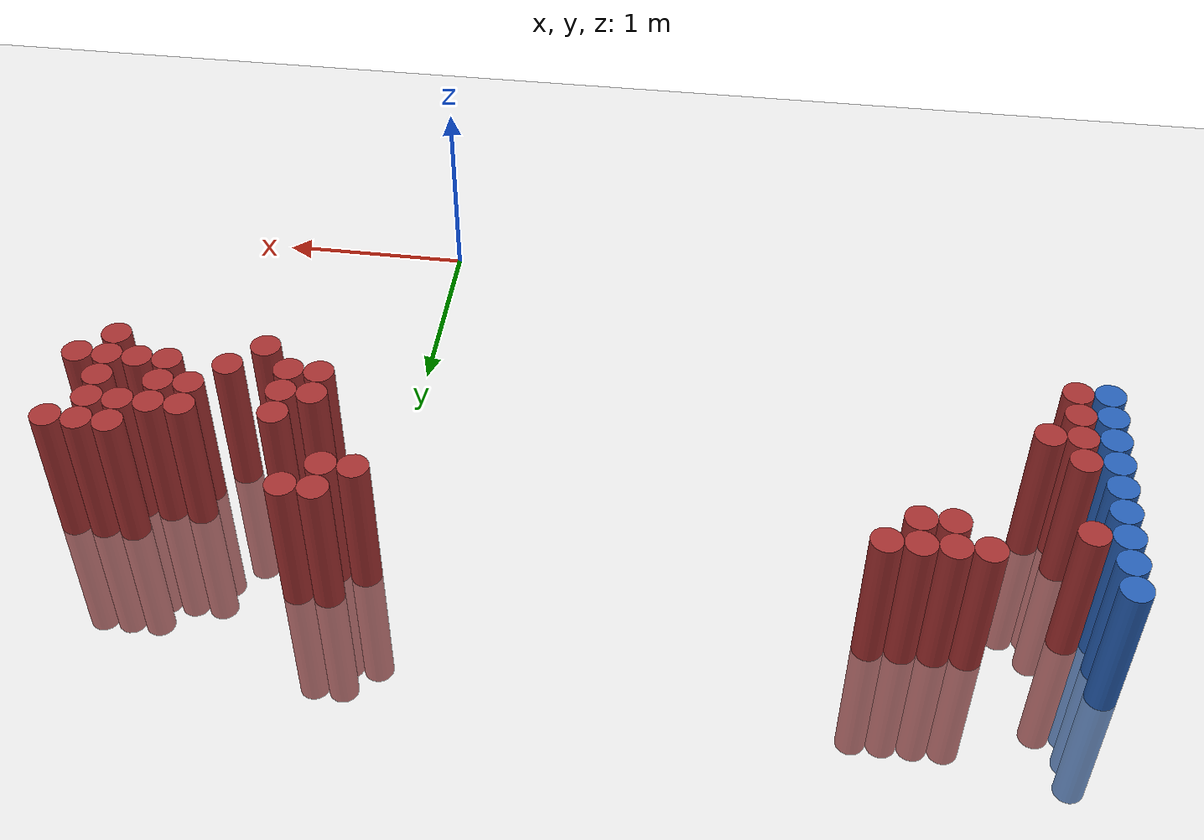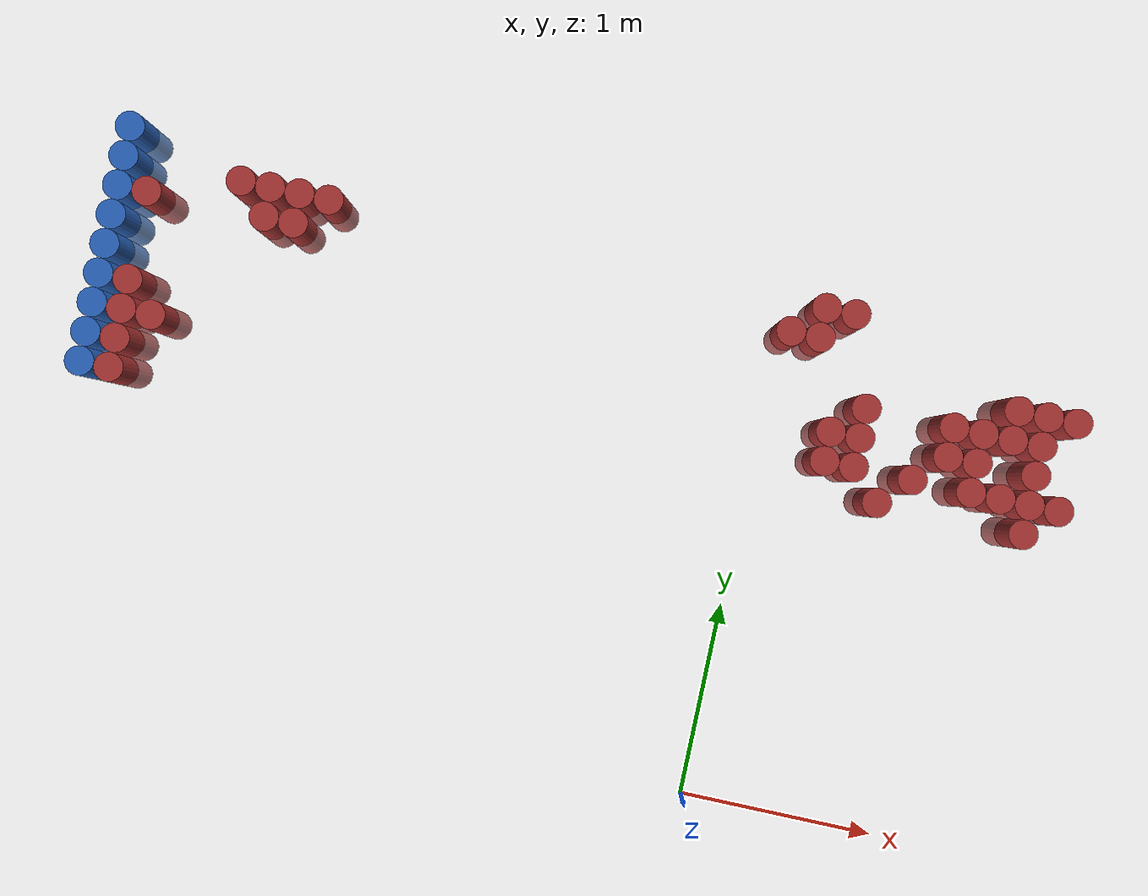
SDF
<sdf version="1.6">
 <world name="default">
  <model name="ground_plane">
   <static>1</static>
   <link name="link">
    <collision name="collision">
     <geometry><plane><normal>0 0 1</normal><size>100 100</size></plane></geometry>
     <surface><friction><ode><mu>100</mu><mu2>50</mu2></ode></friction></surface>
    </collision>
    <visual name="visual">
     <cast_shadows>0</cast_shadows>
     <geometry><plane><normal>0 0 1</normal><size>100 100</size></plane></geometry>
     <material>
      <script><uri>file://media/materials/scripts/gazebo.material</uri><name>Gazebo/Grey</name></script>
     </material>
    </visual>
   </link>
  </model>
  <model name="unit_cylinder_137">
   <static>1</static>
   <pose>-3.425000 1.675000 0.000000 0.000000 0.000000 0.000000</pose>
   <link name="link">
    <inertial>
     <mass>1</mass>
     <inertia><ixx>0.145833</ixx><ixy>0</ixy><ixz>0</ixz><iyy>0.145833</iyy><iyz>0</iyz><izz>0.125</izz></inertia>
    </inertial>
    <collision name="collision">
     <geometry><cylinder><radius>0.075000</radius><length>1.5</length></cylinder></geometry>
    </collision>
    <visual name="visual">
     <geometry><cylinder><radius>0.075000</radius><length>1.5</length></cylinder></geometry>
     <material>
      <ambient>0.152000 0.379000 0.720000 1</ambient>
      <diffuse>0.152000 0.379000 0.720000 1</diffuse>
     </material>
     <material>
      <script><name>Gazebo/Grey</name><uri>file://media/materials/scripts/gazebo.material</uri></script>
     </material>
    </visual>
   </link>
  </model>
  <model name="unit_cylinder_139">
   <static>1</static>
   <pose>-3.425000 1.825000 0.000000 0.000000 0.000000 0.000000</pose>
   <link name="link">
    <inertial>
     <mass>1</mass>
     <inertia><ixx>0.145833</ixx><ixy>0</ixy><ixz>0</ixz><iyy>0.145833</iyy><iyz>0</iyz><izz>0.125</izz></inertia>
    </inertial>
    <collision name="collision">
     <geometry><cylinder><radius>0.075000</radius><length>1.5</length></cylinder></geometry>
    </collision>
    <visual name="visual">
     <geometry><cylinder><radius>0.075000</radius><length>1.5</length></cylinder></geometry>
     <material>
      <ambient>0.152000 0.379000 0.720000 1</ambient>
      <diffuse>0.152000 0.379000 0.720000 1</diffuse>
     </material>
     <material>
      <script><name>Gazebo/Grey</name><uri>file://media/materials/scripts/gazebo.material</uri></script>
     </material>
    </visual>
   </link>
  </model>
  <model name="unit_cylinder_141">
   <static>1</static>
   <pose>-3.425000 1.975000 0.000000 0.000000 0.000000 0.000000</pose>
   <link name="link">
    <inertial>
     <mass>1</mass>
     <inertia><ixx>0.145833</ixx><ixy>0</ixy><ixz>0</ixz><iyy>0.145833</iyy><iyz>0</iyz><izz>0.125</izz></inertia>
    </inertial>
    <collision name="collision">
     <geometry><cylinder><radius>0.075000</radius><length>1.5</length></cylinder></geometry>
    </collision>
    <visual name="visual">
     <geometry><cylinder><radius>0.075000</radius><length>1.5</length></cylinder></geometry>
     <material>
      <ambient>0.152000 0.379000 0.720000 1</ambient>
      <diffuse>0.152000 0.379000 0.720000 1</diffuse>
     </material>
     <material>
      <script><name>Gazebo/Grey</name><uri>file://media/materials/scripts/gazebo.material</uri></script>
     </material>
    </visual>
   </link>
  </model>
  <model name="unit_cylinder_143">
   <static>1</static>
   <pose>-3.425000 2.125000 0.000000 0.000000 0.000000 0.000000</pose>
   <link name="link">
    <inertial>
     <mass>1</mass>
     <inertia><ixx>0.145833</ixx><ixy>0</ixy><ixz>0</ixz><iyy>0.145833</iyy><iyz>0</iyz><izz>0.125</izz></inertia>
    </inertial>
    <collision name="collision">
     <geometry><cylinder><radius>0.075000</radius><length>1.5</length></cylinder></geometry>
    </collision>
    <visual name="visual">
     <geometry><cylinder><radius>0.075000</radius><length>1.5</length></cylinder></geometry>
     <material>
      <ambient>0.152000 0.379000 0.720000 1</ambient>
      <diffuse>0.152000 0.379000 0.720000 1</diffuse>
     </material>
     <material>
      <script><name>Gazebo/Grey</name><uri>file://media/materials/scripts/gazebo.material</uri></script>
     </material>
    </visual>
   </link>
  </model>
  <model name="unit_cylinder_145">
   <static>1</static>
   <pose>-3.425000 2.275000 0.000000 0.000000 0.000000 0.000000</pose>
   <link name="link">
    <inertial>
     <mass>1</mass>
     <inertia><ixx>0.145833</ixx><ixy>0</ixy><ixz>0</ixz><iyy>0.145833</iyy><iyz>0</iyz><izz>0.125</izz></inertia>
    </inertial>
    <collision name="collision">
     <geometry><cylinder><radius>0.075000</radius><length>1.5</length></cylinder></geometry>
    </collision>
    <visual name="visual">
     <geometry><cylinder><radius>0.075000</radius><length>1.5</length></cylinder></geometry>
     <material>
      <ambient>0.152000 0.379000 0.720000 1</ambient>
      <diffuse>0.152000 0.379000 0.720000 1</diffuse>
     </material>
     <material>
      <script><name>Gazebo/Grey</name><uri>file://media/materials/scripts/gazebo.material</uri></script>
     </material>
    </visual>
   </link>
  </model>
  <model name="unit_cylinder_147">
   <static>1</static>
   <pose>-3.425000 2.425000 0.000000 0.000000 0.000000 0.000000</pose>
   <link name="link">
    <inertial>
     <mass>1</mass>
     <inertia><ixx>0.145833</ixx><ixy>0</ixy><ixz>0</ixz><iyy>0.145833</iyy><iyz>0</iyz><izz>0.125</izz></inertia>
    </inertial>
    <collision name="collision">
     <geometry><cylinder><radius>0.075000</radius><length>1.5</length></cylinder></geometry>
    </collision>
    <visual name="visual">
     <geometry><cylinder><radius>0.075000</radius><length>1.5</length></cylinder></geometry>
     <material>
      <ambient>0.152000 0.379000 0.720000 1</ambient>
      <diffuse>0.152000 0.379000 0.720000 1</diffuse>
     </material>
     <material>
      <script><name>Gazebo/Grey</name><uri>file://media/materials/scripts/gazebo.material</uri></script>
     </material>
    </visual>
   </link>
  </model>
  <model name="unit_cylinder_149">
   <static>1</static>
   <pose>-3.425000 2.575000 0.000000 0.000000 0.000000 0.000000</pose>
   <link name="link">
    <inertial>
     <mass>1</mass>
     <inertia><ixx>0.145833</ixx><ixy>0</ixy><ixz>0</ixz><iyy>0.145833</iyy><iyz>0</iyz><izz>0.125</izz></inertia>
    </inertial>
    <collision name="collision">
     <geometry><cylinder><radius>0.075000</radius><length>1.5</length></cylinder></geometry>
    </collision>
    <visual name="visual">
     <geometry><cylinder><radius>0.075000</radius><length>1.5</length></cylinder></geometry>
     <material>
      <ambient>0.152000 0.379000 0.720000 1</ambient>
      <diffuse>0.152000 0.379000 0.720000 1</diffuse>
     </material>
     <material>
      <script><name>Gazebo/Grey</name><uri>file://media/materials/scripts/gazebo.material</uri></script>
     </material>
    </visual>
   </link>
  </model>
  <model name="unit_cylinder_151">
   <static>1</static>
   <pose>-3.425000 2.725000 0.000000 0.000000 0.000000 0.000000</pose>
   <link name="link">
    <inertial>
     <mass>1</mass>
     <inertia><ixx>0.145833</ixx><ixy>0</ixy><ixz>0</ixz><iyy>0.145833</iyy><iyz>0</iyz><izz>0.125</izz></inertia>
    </inertial>
    <collision name="collision">
     <geometry><cylinder><radius>0.075000</radius><length>1.5</length></cylinder></geometry>
    </collision>
    <visual name="visual">
     <geometry><cylinder><radius>0.075000</radius><length>1.5</length></cylinder></geometry>
     <material>
      <ambient>0.152000 0.379000 0.720000 1</ambient>
      <diffuse>0.152000 0.379000 0.720000 1</diffuse>
     </material>
     <material>
      <script><name>Gazebo/Grey</name><uri>file://media/materials/scripts/gazebo.material</uri></script>
     </material>
    </visual>
   </link>
  </model>
  <model name="unit_cylinder_231">
   <static>1</static>
   <pose>-3.425000 1.525000 0.000000 0.000000 0.000000 0.000000</pose>
   <link name="link">
    <inertial>
     <mass>1</mass>
     <inertia><ixx>0.145833</ixx><ixy>0</ixy><ixz>0</ixz><iyy>0.145833</iyy><iyz>0</iyz><izz>0.125</izz></inertia>
    </inertial>
    <collision name="collision">
     <geometry><cylinder><radius>0.075000</radius><length>1.5</length></cylinder></geometry>
    </collision>
    <visual name="visual">
     <geometry><cylinder><radius>0.075000</radius><length>1.5</length></cylinder></geometry>
     <material>
      <ambient>0.152000 0.379000 0.720000 1</ambient>
      <diffuse>0.152000 0.379000 0.720000 1</diffuse>
     </material>
     <material>
      <script><name>Gazebo/Grey</name><uri>file://media/materials/scripts/gazebo.material</uri></script>
     </material>
    </visual>
   </link>
  </model>
  <model name="unit_cylinder_232">
   <static>1</static>
   <pose>-3.425000 1.675000 0.000000 0.000000 0.000000 0.000000</pose>
   <link name="link">
    <inertial>
     <mass>1</mass>
     <inertia><ixx>0.145833</ixx><ixy>0</ixy><ixz>0</ixz><iyy>0.145833</iyy><iyz>0</iyz><izz>0.125</izz></inertia>
    </inertial>
    <collision name="collision">
     <geometry><cylinder><radius>0.075000</radius><length>1.5</length></cylinder></geometry>
    </collision>
    <visual name="visual">
     <geometry><cylinder><radius>0.075000</radius><length>1.5</length></cylinder></geometry>
     <material>
      <ambient>0.152000 0.379000 0.720000 1</ambient>
      <diffuse>0.152000 0.379000 0.720000 1</diffuse>
     </material>
     <material>
      <script><name>Gazebo/Grey</name><uri>file://media/materials/scripts/gazebo.material</uri></script>
     </material>
    </visual>
   </link>
  </model>
  <model name="unit_cylinder_233">
   <static>1</static>
   <pose>-3.425000 1.825000 0.000000 0.000000 0.000000 0.000000</pose>
   <link name="link">
    <inertial>
     <mass>1</mass>
     <inertia><ixx>0.145833</ixx><ixy>0</ixy><ixz>0</ixz><iyy>0.145833</iyy><iyz>0</iyz><izz>0.125</izz></inertia>
    </inertial>
    <collision name="collision">
     <geometry><cylinder><radius>0.075000</radius><length>1.5</length></cylinder></geometry>
    </collision>
    <visual name="visual">
     <geometry><cylinder><radius>0.075000</radius><length>1.5</length></cylinder></geometry>
     <material>
      <ambient>0.152000 0.379000 0.720000 1</ambient>
      <diffuse>0.152000 0.379000 0.720000 1</diffuse>
     </material>
     <material>
      <script><name>Gazebo/Grey</name><uri>file://media/materials/scripts/gazebo.material</uri></script>
     </material>
    </visual>
   </link>
  </model>
  <model name="unit_cylinder_234">
   <static>1</static>
   <pose>-3.425000 1.975000 0.000000 0.000000 0.000000 0.000000</pose>
   <link name="link">
    <inertial>
     <mass>1</mass>
     <inertia><ixx>0.145833</ixx><ixy>0</ixy><ixz>0</ixz><iyy>0.145833</iyy><iyz>0</iyz><izz>0.125</izz></inertia>
    </inertial>
    <collision name="collision">
     <geometry><cylinder><radius>0.075000</radius><length>1.5</length></cylinder></geometry>
    </collision>
    <visual name="visual">
     <geometry><cylinder><radius>0.075000</radius><length>1.5</length></cylinder></geometry>
     <material>
      <ambient>0.152000 0.379000 0.720000 1</ambient>
      <diffuse>0.152000 0.379000 0.720000 1</diffuse>
     </material>
     <material>
      <script><name>Gazebo/Grey</name><uri>file://media/materials/scripts/gazebo.material</uri></script>
     </material>
    </visual>
   </link>
  </model>
  <model name="unit_cylinder_235">
   <static>1</static>
   <pose>-3.425000 2.125000 0.000000 0.000000 0.000000 0.000000</pose>
   <link name="link">
    <inertial>
     <mass>1</mass>
     <inertia><ixx>0.145833</ixx><ixy>0</ixy><ixz>0</ixz><iyy>0.145833</iyy><iyz>0</iyz><izz>0.125</izz></inertia>
    </inertial>
    <collision name="collision">
     <geometry><cylinder><radius>0.075000</radius><length>1.5</length></cylinder></geometry>
    </collision>
    <visual name="visual">
     <geometry><cylinder><radius>0.075000</radius><length>1.5</length></cylinder></geometry>
     <material>
      <ambient>0.152000 0.379000 0.720000 1</ambient>
      <diffuse>0.152000 0.379000 0.720000 1</diffuse>
     </material>
     <material>
      <script><name>Gazebo/Grey</name><uri>file://media/materials/scripts/gazebo.material</uri></script>
     </material>
    </visual>
   </link>
  </model>
  <model name="unit_cylinder_236">
   <static>1</static>
   <pose>-3.425000 2.275000 0.000000 0.000000 0.000000 0.000000</pose>
   <link name="link">
    <inertial>
     <mass>1</mass>
     <inertia><ixx>0.145833</ixx><ixy>0</ixy><ixz>0</ixz><iyy>0.145833</iyy><iyz>0</iyz><izz>0.125</izz></inertia>
    </inertial>
    <collision name="collision">
     <geometry><cylinder><radius>0.075000</radius><length>1.5</length></cylinder></geometry>
    </collision>
    <visual name="visual">
     <geometry><cylinder><radius>0.075000</radius><length>1.5</length></cylinder></geometry>
     <material>
      <ambient>0.152000 0.379000 0.720000 1</ambient>
      <diffuse>0.152000 0.379000 0.720000 1</diffuse>
     </material>
     <material>
      <script><name>Gazebo/Grey</name><uri>file://media/materials/scripts/gazebo.material</uri></script>
     </material>
    </visual>
   </link>
  </model>
  <model name="unit_cylinder_237">
   <static>1</static>
   <pose>-3.425000 2.425000 0.000000 0.000000 0.000000 0.000000</pose>
   <link name="link">
    <inertial>
     <mass>1</mass>
     <inertia><ixx>0.145833</ixx><ixy>0</ixy><ixz>0</ixz><iyy>0.145833</iyy><iyz>0</iyz><izz>0.125</izz></inertia>
    </inertial>
    <collision name="collision">
     <geometry><cylinder><radius>0.075000</radius><length>1.5</length></cylinder></geometry>
    </collision>
    <visual name="visual">
     <geometry><cylinder><radius>0.075000</radius><length>1.5</length></cylinder></geometry>
     <material>
      <ambient>0.152000 0.379000 0.720000 1</ambient>
      <diffuse>0.152000 0.379000 0.720000 1</diffuse>
     </material>
     <material>
      <script><name>Gazebo/Grey</name><uri>file://media/materials/scripts/gazebo.material</uri></script>
     </material>
    </visual>
   </link>
  </model>
  <model name="unit_cylinder_238">
   <static>1</static>
   <pose>-3.425000 2.575000 0.000000 0.000000 0.000000 0.000000</pose>
   <link name="link">
    <inertial>
     <mass>1</mass>
     <inertia><ixx>0.145833</ixx><ixy>0</ixy><ixz>0</ixz><iyy>0.145833</iyy><iyz>0</iyz><izz>0.125</izz></inertia>
    </inertial>
    <collision name="collision">
     <geometry><cylinder><radius>0.075000</radius><length>1.5</length></cylinder></geometry>
    </collision>
    <visual name="visual">
     <geometry><cylinder><radius>0.075000</radius><length>1.5</length></cylinder></geometry>
     <material>
      <ambient>0.152000 0.379000 0.720000 1</ambient>
      <diffuse>0.152000 0.379000 0.720000 1</diffuse>
     </material>
     <material>
      <script><name>Gazebo/Grey</name><uri>file://media/materials/scripts/gazebo.material</uri></script>
     </material>
    </visual>
   </link>
  </model>
  <model name="unit_cylinder_266">
   <static>1</static>
   <pose>-3.275000 1.525000 0.000000 0.000000 0.000000 0.000000</pose>
   <link name="link">
    <inertial>
     <mass>1</mass>
     <inertia><ixx>0.145833</ixx><ixy>0</ixy><ixz>0</ixz><iyy>0.145833</iyy><iyz>0</iyz><izz>0.125</izz></inertia>
    </inertial>
    <collision name="collision">
     <geometry><cylinder><radius>0.075000</radius><length>1.5</length></cylinder></geometry>
    </collision>
    <visual name="visual">
     <geometry><cylinder><radius>0.075000</radius><length>1.5</length></cylinder></geometry>
     <material>
      <ambient>0.648000 0.192000 0.192000 1</ambient>
      <diffuse>0.648000 0.192000 0.192000 1</diffuse>
     </material>
     <material>
      <script><name>Gazebo/Grey</name><uri>file://media/materials/scripts/gazebo.material</uri></script>
     </material>
    </visual>
   </link>
  </model>
  <model name="unit_cylinder_267">
   <static>1</static>
   <pose>-3.275000 1.675000 0.000000 0.000000 0.000000 0.000000</pose>
   <link name="link">
    <inertial>
     <mass>1</mass>
     <inertia><ixx>0.145833</ixx><ixy>0</ixy><ixz>0</ixz><iyy>0.145833</iyy><iyz>0</iyz><izz>0.125</izz></inertia>
    </inertial>
    <collision name="collision">
     <geometry><cylinder><radius>0.075000</radius><length>1.5</length></cylinder></geometry>
    </collision>
    <visual name="visual">
     <geometry><cylinder><radius>0.075000</radius><length>1.5</length></cylinder></geometry>
     <material>
      <ambient>0.648000 0.192000 0.192000 1</ambient>
      <diffuse>0.648000 0.192000 0.192000 1</diffuse>
     </material>
     <material>
      <script><name>Gazebo/Grey</name><uri>file://media/materials/scripts/gazebo.material</uri></script>
     </material>
    </visual>
   </link>
  </model>
  <model name="unit_cylinder_268">
   <static>1</static>
   <pose>-3.275000 1.825000 0.000000 0.000000 0.000000 0.000000</pose>
   <link name="link">
    <inertial>
     <mass>1</mass>
     <inertia><ixx>0.145833</ixx><ixy>0</ixy><ixz>0</ixz><iyy>0.145833</iyy><iyz>0</iyz><izz>0.125</izz></inertia>
    </inertial>
    <collision name="collision">
     <geometry><cylinder><radius>0.075000</radius><length>1.5</length></cylinder></geometry>
    </collision>
    <visual name="visual">
     <geometry><cylinder><radius>0.075000</radius><length>1.5</length></cylinder></geometry>
     <material>
      <ambient>0.648000 0.192000 0.192000 1</ambient>
      <diffuse>0.648000 0.192000 0.192000 1</diffuse>
     </material>
     <material>
      <script><name>Gazebo/Grey</name><uri>file://media/materials/scripts/gazebo.material</uri></script>
     </material>
    </visual>
   </link>
  </model>
  <model name="unit_cylinder_269">
   <static>1</static>
   <pose>-3.275000 1.975000 0.000000 0.000000 0.000000 0.000000</pose>
   <link name="link">
    <inertial>
     <mass>1</mass>
     <inertia><ixx>0.145833</ixx><ixy>0</ixy><ixz>0</ixz><iyy>0.145833</iyy><iyz>0</iyz><izz>0.125</izz></inertia>
    </inertial>
    <collision name="collision">
     <geometry><cylinder><radius>0.075000</radius><length>1.5</length></cylinder></geometry>
    </collision>
    <visual name="visual">
     <geometry><cylinder><radius>0.075000</radius><length>1.5</length></cylinder></geometry>
     <material>
      <ambient>0.648000 0.192000 0.192000 1</ambient>
      <diffuse>0.648000 0.192000 0.192000 1</diffuse>
     </material>
     <material>
      <script><name>Gazebo/Grey</name><uri>file://media/materials/scripts/gazebo.material</uri></script>
     </material>
    </visual>
   </link>
  </model>
  <model name="unit_cylinder_270">
   <static>1</static>
   <pose>-3.275000 2.425000 0.000000 0.000000 0.000000 0.000000</pose>
   <link name="link">
    <inertial>
     <mass>1</mass>
     <inertia><ixx>0.145833</ixx><ixy>0</ixy><ixz>0</ixz><iyy>0.145833</iyy><iyz>0</iyz><izz>0.125</izz></inertia>
    </inertial>
    <collision name="collision">
     <geometry><cylinder><radius>0.075000</radius><length>1.5</length></cylinder></geometry>
    </collision>
    <visual name="visual">
     <geometry><cylinder><radius>0.075000</radius><length>1.5</length></cylinder></geometry>
     <material>
      <ambient>0.648000 0.192000 0.192000 1</ambient>
      <diffuse>0.648000 0.192000 0.192000 1</diffuse>
     </material>
     <material>
      <script><name>Gazebo/Grey</name><uri>file://media/materials/scripts/gazebo.material</uri></script>
     </material>
    </visual>
   </link>
  </model>
  <model name="unit_cylinder_281">
   <static>1</static>
   <pose>-3.125000 1.825000 0.000000 0.000000 0.000000 0.000000</pose>
   <link name="link">
    <inertial>
     <mass>1</mass>
     <inertia><ixx>0.145833</ixx><ixy>0</ixy><ixz>0</ixz><iyy>0.145833</iyy><iyz>0</iyz><izz>0.125</izz></inertia>
    </inertial>
    <collision name="collision">
     <geometry><cylinder><radius>0.075000</radius><length>1.5</length></cylinder></geometry>
    </collision>
    <visual name="visual">
     <geometry><cylinder><radius>0.075000</radius><length>1.5</length></cylinder></geometry>
     <material>
      <ambient>0.648000 0.192000 0.192000 1</ambient>
      <diffuse>0.648000 0.192000 0.192000 1</diffuse>
     </material>
     <material>
      <script><name>Gazebo/Grey</name><uri>file://media/materials/scripts/gazebo.material</uri></script>
     </material>
    </visual>
   </link>
  </model>
  <model name="unit_cylinder_301">
   <static>1</static>
   <pose>-2.825000 2.575000 0.000000 0.000000 0.000000 0.000000</pose>
   <link name="link">
    <inertial>
     <mass>1</mass>
     <inertia><ixx>0.145833</ixx><ixy>0</ixy><ixz>0</ixz><iyy>0.145833</iyy><iyz>0</iyz><izz>0.125</izz></inertia>
    </inertial>
    <collision name="collision">
     <geometry><cylinder><radius>0.075000</radius><length>1.5</length></cylinder></geometry>
    </collision>
    <visual name="visual">
     <geometry><cylinder><radius>0.075000</radius><length>1.5</length></cylinder></geometry>
     <material>
      <ambient>0.648000 0.192000 0.192000 1</ambient>
      <diffuse>0.648000 0.192000 0.192000 1</diffuse>
     </material>
     <material>
      <script><name>Gazebo/Grey</name><uri>file://media/materials/scripts/gazebo.material</uri></script>
     </material>
    </visual>
   </link>
  </model>
  <model name="unit_cylinder_313">
   <static>1</static>
   <pose>-2.675000 2.425000 0.000000 0.000000 0.000000 0.000000</pose>
   <link name="link">
    <inertial>
     <mass>1</mass>
     <inertia><ixx>0.145833</ixx><ixy>0</ixy><ixz>0</ixz><iyy>0.145833</iyy><iyz>0</iyz><izz>0.125</izz></inertia>
    </inertial>
    <collision name="collision">
     <geometry><cylinder><radius>0.075000</radius><length>1.5</length></cylinder></geometry>
    </collision>
    <visual name="visual">
     <geometry><cylinder><radius>0.075000</radius><length>1.5</length></cylinder></geometry>
     <material>
      <ambient>0.648000 0.192000 0.192000 1</ambient>
      <diffuse>0.648000 0.192000 0.192000 1</diffuse>
     </material>
     <material>
      <script><name>Gazebo/Grey</name><uri>file://media/materials/scripts/gazebo.material</uri></script>
     </material>
    </visual>
   </link>
  </model>
  <model name="unit_cylinder_314">
   <static>1</static>
   <pose>-2.675000 2.575000 0.000000 0.000000 0.000000 0.000000</pose>
   <link name="link">
    <inertial>
     <mass>1</mass>
     <inertia><ixx>0.145833</ixx><ixy>0</ixy><ixz>0</ixz><iyy>0.145833</iyy><iyz>0</iyz><izz>0.125</izz></inertia>
    </inertial>
    <collision name="collision">
     <geometry><cylinder><radius>0.075000</radius><length>1.5</length></cylinder></geometry>
    </collision>
    <visual name="visual">
     <geometry><cylinder><radius>0.075000</radius><length>1.5</length></cylinder></geometry>
     <material>
      <ambient>0.648000 0.192000 0.192000 1</ambient>
      <diffuse>0.648000 0.192000 0.192000 1</diffuse>
     </material>
     <material>
      <script><name>Gazebo/Grey</name><uri>file://media/materials/scripts/gazebo.material</uri></script>
     </material>
    </visual>
   </link>
  </model>
  <model name="unit_cylinder_322">
   <static>1</static>
   <pose>-2.525000 2.425000 0.000000 0.000000 0.000000 0.000000</pose>
   <link name="link">
    <inertial>
     <mass>1</mass>
     <inertia><ixx>0.145833</ixx><ixy>0</ixy><ixz>0</ixz><iyy>0.145833</iyy><iyz>0</iyz><izz>0.125</izz></inertia>
    </inertial>
    <collision name="collision">
     <geometry><cylinder><radius>0.075000</radius><length>1.5</length></cylinder></geometry>
    </collision>
    <visual name="visual">
     <geometry><cylinder><radius>0.075000</radius><length>1.5</length></cylinder></geometry>
     <material>
      <ambient>0.648000 0.192000 0.192000 1</ambient>
      <diffuse>0.648000 0.192000 0.192000 1</diffuse>
     </material>
     <material>
      <script><name>Gazebo/Grey</name><uri>file://media/materials/scripts/gazebo.material</uri></script>
     </material>
    </visual>
   </link>
  </model>
  <model name="unit_cylinder_323">
   <static>1</static>
   <pose>-2.525000 2.575000 0.000000 0.000000 0.000000 0.000000</pose>
   <link name="link">
    <inertial>
     <mass>1</mass>
     <inertia><ixx>0.145833</ixx><ixy>0</ixy><ixz>0</ixz><iyy>0.145833</iyy><iyz>0</iyz><izz>0.125</izz></inertia>
    </inertial>
    <collision name="collision">
     <geometry><cylinder><radius>0.075000</radius><length>1.5</length></cylinder></geometry>
    </collision>
    <visual name="visual">
     <geometry><cylinder><radius>0.075000</radius><length>1.5</length></cylinder></geometry>
     <material>
      <ambient>0.648000 0.192000 0.192000 1</ambient>
      <diffuse>0.648000 0.192000 0.192000 1</diffuse>
     </material>
     <material>
      <script><name>Gazebo/Grey</name><uri>file://media/materials/scripts/gazebo.material</uri></script>
     </material>
    </visual>
   </link>
  </model>
  <model name="unit_cylinder_326">
   <static>1</static>
   <pose>-2.375000 2.575000 0.000000 0.000000 0.000000 0.000000</pose>
   <link name="link">
    <inertial>
     <mass>1</mass>
     <inertia><ixx>0.145833</ixx><ixy>0</ixy><ixz>0</ixz><iyy>0.145833</iyy><iyz>0</iyz><izz>0.125</izz></inertia>
    </inertial>
    <collision name="collision">
     <geometry><cylinder><radius>0.075000</radius><length>1.5</length></cylinder></geometry>
    </collision>
    <visual name="visual">
     <geometry><cylinder><radius>0.075000</radius><length>1.5</length></cylinder></geometry>
     <material>
      <ambient>0.648000 0.192000 0.192000 1</ambient>
      <diffuse>0.648000 0.192000 0.192000 1</diffuse>
     </material>
     <material>
      <script><name>Gazebo/Grey</name><uri>file://media/materials/scripts/gazebo.material</uri></script>
     </material>
    </visual>
   </link>
  </model>
  <model name="unit_cylinder_374">
   <static>1</static>
   <pose>0.025000 2.425000 0.000000 0.000000 0.000000 0.000000</pose>
   <link name="link">
    <inertial>
     <mass>1</mass>
     <inertia><ixx>0.145833</ixx><ixy>0</ixy><ixz>0</ixz><iyy>0.145833</iyy><iyz>0</iyz><izz>0.125</izz></inertia>
    </inertial>
    <collision name="collision">
     <geometry><cylinder><radius>0.075000</radius><length>1.5</length></cylinder></geometry>
    </collision>
    <visual name="visual">
     <geometry><cylinder><radius>0.075000</radius><length>1.5</length></cylinder></geometry>
     <material>
      <ambient>0.648000 0.192000 0.192000 1</ambient>
      <diffuse>0.648000 0.192000 0.192000 1</diffuse>
     </material>
     <material>
      <script><name>Gazebo/Grey</name><uri>file://media/materials/scripts/gazebo.material</uri></script>
     </material>
    </visual>
   </link>
  </model>
  <model name="unit_cylinder_380">
   <static>1</static>
   <pose>0.175000 2.425000 0.000000 0.000000 0.000000 0.000000</pose>
   <link name="link">
    <inertial>
     <mass>1</mass>
     <inertia><ixx>0.145833</ixx><ixy>0</ixy><ixz>0</ixz><iyy>0.145833</iyy><iyz>0</iyz><izz>0.125</izz></inertia>
    </inertial>
    <collision name="collision">
     <geometry><cylinder><radius>0.075000</radius><length>1.5</length></cylinder></geometry>
    </collision>
    <visual name="visual">
     <geometry><cylinder><radius>0.075000</radius><length>1.5</length></cylinder></geometry>
     <material>
      <ambient>0.648000 0.192000 0.192000 1</ambient>
      <diffuse>0.648000 0.192000 0.192000 1</diffuse>
     </material>
     <material>
      <script><name>Gazebo/Grey</name><uri>file://media/materials/scripts/gazebo.material</uri></script>
     </material>
    </visual>
   </link>
  </model>
  <model name="unit_cylinder_381">
   <static>1</static>
   <pose>0.175000 2.575000 0.000000 0.000000 0.000000 0.000000</pose>
   <link name="link">
    <inertial>
     <mass>1</mass>
     <inertia><ixx>0.145833</ixx><ixy>0</ixy><ixz>0</ixz><iyy>0.145833</iyy><iyz>0</iyz><izz>0.125</izz></inertia>
    </inertial>
    <collision name="collision">
     <geometry><cylinder><radius>0.075000</radius><length>1.5</length></cylinder></geometry>
    </collision>
    <visual name="visual">
     <geometry><cylinder><radius>0.075000</radius><length>1.5</length></cylinder></geometry>
     <material>
      <ambient>0.648000 0.192000 0.192000 1</ambient>
      <diffuse>0.648000 0.192000 0.192000 1</diffuse>
     </material>
     <material>
      <script><name>Gazebo/Grey</name><uri>file://media/materials/scripts/gazebo.material</uri></script>
     </material>
    </visual>
   </link>
  </model>
  <model name="unit_cylinder_387">
   <static>1</static>
   <pose>0.325000 1.825000 0.000000 0.000000 0.000000 0.000000</pose>
   <link name="link">
    <inertial>
     <mass>1</mass>
     <inertia><ixx>0.145833</ixx><ixy>0</ixy><ixz>0</ixz><iyy>0.145833</iyy><iyz>0</iyz><izz>0.125</izz></inertia>
    </inertial>
    <collision name="collision">
     <geometry><cylinder><radius>0.075000</radius><length>1.5</length></cylinder></geometry>
    </collision>
    <visual name="visual">
     <geometry><cylinder><radius>0.075000</radius><length>1.5</length></cylinder></geometry>
     <material>
      <ambient>0.648000 0.192000 0.192000 1</ambient>
      <diffuse>0.648000 0.192000 0.192000 1</diffuse>
     </material>
     <material>
      <script><name>Gazebo/Grey</name><uri>file://media/materials/scripts/gazebo.material</uri></script>
     </material>
    </visual>
   </link>
  </model>
  <model name="unit_cylinder_388">
   <static>1</static>
   <pose>0.325000 1.975000 0.000000 0.000000 0.000000 0.000000</pose>
   <link name="link">
    <inertial>
     <mass>1</mass>
     <inertia><ixx>0.145833</ixx><ixy>0</ixy><ixz>0</ixz><iyy>0.145833</iyy><iyz>0</iyz><izz>0.125</izz></inertia>
    </inertial>
    <collision name="collision">
     <geometry><cylinder><radius>0.075000</radius><length>1.5</length></cylinder></geometry>
    </collision>
    <visual name="visual">
     <geometry><cylinder><radius>0.075000</radius><length>1.5</length></cylinder></geometry>
     <material>
      <ambient>0.648000 0.192000 0.192000 1</ambient>
      <diffuse>0.648000 0.192000 0.192000 1</diffuse>
     </material>
     <material>
      <script><name>Gazebo/Grey</name><uri>file://media/materials/scripts/gazebo.material</uri></script>
     </material>
    </visual>
   </link>
  </model>
  <model name="unit_cylinder_389">
   <static>1</static>
   <pose>0.325000 2.575000 0.000000 0.000000 0.000000 0.000000</pose>
   <link name="link">
    <inertial>
     <mass>1</mass>
     <inertia><ixx>0.145833</ixx><ixy>0</ixy><ixz>0</ixz><iyy>0.145833</iyy><iyz>0</iyz><izz>0.125</izz></inertia>
    </inertial>
    <collision name="collision">
     <geometry><cylinder><radius>0.075000</radius><length>1.5</length></cylinder></geometry>
    </collision>
    <visual name="visual">
     <geometry><cylinder><radius>0.075000</radius><length>1.5</length></cylinder></geometry>
     <material>
      <ambient>0.648000 0.192000 0.192000 1</ambient>
      <diffuse>0.648000 0.192000 0.192000 1</diffuse>
     </material>
     <material>
      <script><name>Gazebo/Grey</name><uri>file://media/materials/scripts/gazebo.material</uri></script>
     </material>
    </visual>
   </link>
  </model>
  <model name="unit_cylinder_395">
   <static>1</static>
   <pose>0.475000 1.825000 0.000000 0.000000 0.000000 0.000000</pose>
   <link name="link">
    <inertial>
     <mass>1</mass>
     <inertia><ixx>0.145833</ixx><ixy>0</ixy><ixz>0</ixz><iyy>0.145833</iyy><iyz>0</iyz><izz>0.125</izz></inertia>
    </inertial>
    <collision name="collision">
     <geometry><cylinder><radius>0.075000</radius><length>1.5</length></cylinder></geometry>
    </collision>
    <visual name="visual">
     <geometry><cylinder><radius>0.075000</radius><length>1.5</length></cylinder></geometry>
     <material>
      <ambient>0.648000 0.192000 0.192000 1</ambient>
      <diffuse>0.648000 0.192000 0.192000 1</diffuse>
     </material>
     <material>
      <script><name>Gazebo/Grey</name><uri>file://media/materials/scripts/gazebo.material</uri></script>
     </material>
    </visual>
   </link>
  </model>
  <model name="unit_cylinder_396">
   <static>1</static>
   <pose>0.475000 1.975000 0.000000 0.000000 0.000000 0.000000</pose>
   <link name="link">
    <inertial>
     <mass>1</mass>
     <inertia><ixx>0.145833</ixx><ixy>0</ixy><ixz>0</ixz><iyy>0.145833</iyy><iyz>0</iyz><izz>0.125</izz></inertia>
    </inertial>
    <collision name="collision">
     <geometry><cylinder><radius>0.075000</radius><length>1.5</length></cylinder></geometry>
    </collision>
    <visual name="visual">
     <geometry><cylinder><radius>0.075000</radius><length>1.5</length></cylinder></geometry>
     <material>
      <ambient>0.648000 0.192000 0.192000 1</ambient>
      <diffuse>0.648000 0.192000 0.192000 1</diffuse>
     </material>
     <material>
      <script><name>Gazebo/Grey</name><uri>file://media/materials/scripts/gazebo.material</uri></script>
     </material>
    </visual>
   </link>
  </model>
  <model name="unit_cylinder_397">
   <static>1</static>
   <pose>0.475000 2.125000 0.000000 0.000000 0.000000 0.000000</pose>
   <link name="link">
    <inertial>
     <mass>1</mass>
     <inertia><ixx>0.145833</ixx><ixy>0</ixy><ixz>0</ixz><iyy>0.145833</iyy><iyz>0</iyz><izz>0.125</izz></inertia>
    </inertial>
    <collision name="collision">
     <geometry><cylinder><radius>0.075000</radius><length>1.5</length></cylinder></geometry>
    </collision>
    <visual name="visual">
     <geometry><cylinder><radius>0.075000</radius><length>1.5</length></cylinder></geometry>
     <material>
      <ambient>0.648000 0.192000 0.192000 1</ambient>
      <diffuse>0.648000 0.192000 0.192000 1</diffuse>
     </material>
     <material>
      <script><name>Gazebo/Grey</name><uri>file://media/materials/scripts/gazebo.material</uri></script>
     </material>
    </visual>
   </link>
  </model>
  <model name="unit_cylinder_400">
   <static>1</static>
   <pose>0.625000 1.675000 0.000000 0.000000 0.000000 0.000000</pose>
   <link name="link">
    <inertial>
     <mass>1</mass>
     <inertia><ixx>0.145833</ixx><ixy>0</ixy><ixz>0</ixz><iyy>0.145833</iyy><iyz>0</iyz><izz>0.125</izz></inertia>
    </inertial>
    <collision name="collision">
     <geometry><cylinder><radius>0.075000</radius><length>1.5</length></cylinder></geometry>
    </collision>
    <visual name="visual">
     <geometry><cylinder><radius>0.075000</radius><length>1.5</length></cylinder></geometry>
     <material>
      <ambient>0.648000 0.192000 0.192000 1</ambient>
      <diffuse>0.648000 0.192000 0.192000 1</diffuse>
     </material>
     <material>
      <script><name>Gazebo/Grey</name><uri>file://media/materials/scripts/gazebo.material</uri></script>
     </material>
    </visual>
   </link>
  </model>
  <model name="unit_cylinder_401">
   <static>1</static>
   <pose>0.775000 1.825000 0.000000 0.000000 0.000000 0.000000</pose>
   <link name="link">
    <inertial>
     <mass>1</mass>
     <inertia><ixx>0.145833</ixx><ixy>0</ixy><ixz>0</ixz><iyy>0.145833</iyy><iyz>0</iyz><izz>0.125</izz></inertia>
    </inertial>
    <collision name="collision">
     <geometry><cylinder><radius>0.075000</radius><length>1.5</length></cylinder></geometry>
    </collision>
    <visual name="visual">
     <geometry><cylinder><radius>0.075000</radius><length>1.5</length></cylinder></geometry>
     <material>
      <ambient>0.648000 0.192000 0.192000 1</ambient>
      <diffuse>0.648000 0.192000 0.192000 1</diffuse>
     </material>
     <material>
      <script><name>Gazebo/Grey</name><uri>file://media/materials/scripts/gazebo.material</uri></script>
     </material>
    </visual>
   </link>
  </model>
  <model name="unit_cylinder_403">
   <static>1</static>
   <pose>0.925000 1.975000 0.000000 0.000000 0.000000 0.000000</pose>
   <link name="link">
    <inertial>
     <mass>1</mass>
     <inertia><ixx>0.145833</ixx><ixy>0</ixy><ixz>0</ixz><iyy>0.145833</iyy><iyz>0</iyz><izz>0.125</izz></inertia>
    </inertial>
    <collision name="collision">
     <geometry><cylinder><radius>0.075000</radius><length>1.5</length></cylinder></geometry>
    </collision>
    <visual name="visual">
     <geometry><cylinder><radius>0.075000</radius><length>1.5</length></cylinder></geometry>
     <material>
      <ambient>0.648000 0.192000 0.192000 1</ambient>
      <diffuse>0.648000 0.192000 0.192000 1</diffuse>
     </material>
     <material>
      <script><name>Gazebo/Grey</name><uri>file://media/materials/scripts/gazebo.material</uri></script>
     </material>
    </visual>
   </link>
  </model>
  <model name="unit_cylinder_404">
   <static>1</static>
   <pose>0.925000 2.125000 0.000000 0.000000 0.000000 0.000000</pose>
   <link name="link">
    <inertial>
     <mass>1</mass>
     <inertia><ixx>0.145833</ixx><ixy>0</ixy><ixz>0</ixz><iyy>0.145833</iyy><iyz>0</iyz><izz>0.125</izz></inertia>
    </inertial>
    <collision name="collision">
     <geometry><cylinder><radius>0.075000</radius><length>1.5</length></cylinder></geometry>
    </collision>
    <visual name="visual">
     <geometry><cylinder><radius>0.075000</radius><length>1.5</length></cylinder></geometry>
     <material>
      <ambient>0.648000 0.192000 0.192000 1</ambient>
      <diffuse>0.648000 0.192000 0.192000 1</diffuse>
     </material>
     <material>
      <script><name>Gazebo/Grey</name><uri>file://media/materials/scripts/gazebo.material</uri></script>
     </material>
    </visual>
   </link>
  </model>
  <model name="unit_cylinder_408">
   <static>1</static>
   <pose>1.075000 1.825000 0.000000 0.000000 0.000000 0.000000</pose>
   <link name="link">
    <inertial>
     <mass>1</mass>
     <inertia><ixx>0.145833</ixx><ixy>0</ixy><ixz>0</ixz><iyy>0.145833</iyy><iyz>0</iyz><izz>0.125</izz></inertia>
    </inertial>
    <collision name="collision">
     <geometry><cylinder><radius>0.075000</radius><length>1.5</length></cylinder></geometry>
    </collision>
    <visual name="visual">
     <geometry><cylinder><radius>0.075000</radius><length>1.5</length></cylinder></geometry>
     <material>
      <ambient>0.648000 0.192000 0.192000 1</ambient>
      <diffuse>0.648000 0.192000 0.192000 1</diffuse>
     </material>
     <material>
      <script><name>Gazebo/Grey</name><uri>file://media/materials/scripts/gazebo.material</uri></script>
     </material>
    </visual>
   </link>
  </model>
  <model name="unit_cylinder_409">
   <static>1</static>
   <pose>1.075000 1.975000 0.000000 0.000000 0.000000 0.000000</pose>
   <link name="link">
    <inertial>
     <mass>1</mass>
     <inertia><ixx>0.145833</ixx><ixy>0</ixy><ixz>0</ixz><iyy>0.145833</iyy><iyz>0</iyz><izz>0.125</izz></inertia>
    </inertial>
    <collision name="collision">
     <geometry><cylinder><radius>0.075000</radius><length>1.5</length></cylinder></geometry>
    </collision>
    <visual name="visual">
     <geometry><cylinder><radius>0.075000</radius><length>1.5</length></cylinder></geometry>
     <material>
      <ambient>0.648000 0.192000 0.192000 1</ambient>
      <diffuse>0.648000 0.192000 0.192000 1</diffuse>
     </material>
     <material>
      <script><name>Gazebo/Grey</name><uri>file://media/materials/scripts/gazebo.material</uri></script>
     </material>
    </visual>
   </link>
  </model>
  <model name="unit_cylinder_410">
   <static>1</static>
   <pose>1.075000 2.125000 0.000000 0.000000 0.000000 0.000000</pose>
   <link name="link">
    <inertial>
     <mass>1</mass>
     <inertia><ixx>0.145833</ixx><ixy>0</ixy><ixz>0</ixz><iyy>0.145833</iyy><iyz>0</iyz><izz>0.125</izz></inertia>
    </inertial>
    <collision name="collision">
     <geometry><cylinder><radius>0.075000</radius><length>1.5</length></cylinder></geometry>
    </collision>
    <visual name="visual">
     <geometry><cylinder><radius>0.075000</radius><length>1.5</length></cylinder></geometry>
     <material>
      <ambient>0.648000 0.192000 0.192000 1</ambient>
      <diffuse>0.648000 0.192000 0.192000 1</diffuse>
     </material>
     <material>
      <script><name>Gazebo/Grey</name><uri>file://media/materials/scripts/gazebo.material</uri></script>
     </material>
    </visual>
   </link>
  </model>
  <model name="unit_cylinder_418">
   <static>1</static>
   <pose>1.225000 1.825000 0.000000 0.000000 0.000000 0.000000</pose>
   <link name="link">
    <inertial>
     <mass>1</mass>
     <inertia><ixx>0.145833</ixx><ixy>0</ixy><ixz>0</ixz><iyy>0.145833</iyy><iyz>0</iyz><izz>0.125</izz></inertia>
    </inertial>
    <collision name="collision">
     <geometry><cylinder><radius>0.075000</radius><length>1.5</length></cylinder></geometry>
    </collision>
    <visual name="visual">
     <geometry><cylinder><radius>0.075000</radius><length>1.5</length></cylinder></geometry>
     <material>
      <ambient>0.648000 0.192000 0.192000 1</ambient>
      <diffuse>0.648000 0.192000 0.192000 1</diffuse>
     </material>
     <material>
      <script><name>Gazebo/Grey</name><uri>file://media/materials/scripts/gazebo.material</uri></script>
     </material>
    </visual>
   </link>
  </model>
  <model name="unit_cylinder_419">
   <static>1</static>
   <pose>1.225000 2.125000 0.000000 0.000000 0.000000 0.000000</pose>
   <link name="link">
    <inertial>
     <mass>1</mass>
     <inertia><ixx>0.145833</ixx><ixy>0</ixy><ixz>0</ixz><iyy>0.145833</iyy><iyz>0</iyz><izz>0.125</izz></inertia>
    </inertial>
    <collision name="collision">
     <geometry><cylinder><radius>0.075000</radius><length>1.5</length></cylinder></geometry>
    </collision>
    <visual name="visual">
     <geometry><cylinder><radius>0.075000</radius><length>1.5</length></cylinder></geometry>
     <material>
      <ambient>0.648000 0.192000 0.192000 1</ambient>
      <diffuse>0.648000 0.192000 0.192000 1</diffuse>
     </material>
     <material>
      <script><name>Gazebo/Grey</name><uri>file://media/materials/scripts/gazebo.material</uri></script>
     </material>
    </visual>
   </link>
  </model>
  <model name="unit_cylinder_420">
   <static>1</static>
   <pose>1.225000 2.275000 0.000000 0.000000 0.000000 0.000000</pose>
   <link name="link">
    <inertial>
     <mass>1</mass>
     <inertia><ixx>0.145833</ixx><ixy>0</ixy><ixz>0</ixz><iyy>0.145833</iyy><iyz>0</iyz><izz>0.125</izz></inertia>
    </inertial>
    <collision name="collision">
     <geometry><cylinder><radius>0.075000</radius><length>1.5</length></cylinder></geometry>
    </collision>
    <visual name="visual">
     <geometry><cylinder><radius>0.075000</radius><length>1.5</length></cylinder></geometry>
     <material>
      <ambient>0.648000 0.192000 0.192000 1</ambient>
      <diffuse>0.648000 0.192000 0.192000 1</diffuse>
     </material>
     <material>
      <script><name>Gazebo/Grey</name><uri>file://media/materials/scripts/gazebo.material</uri></script>
     </material>
    </visual>
   </link>
  </model>
  <model name="unit_cylinder_430">
   <static>1</static>
   <pose>1.375000 1.675000 0.000000 0.000000 0.000000 0.000000</pose>
   <link name="link">
    <inertial>
     <mass>1</mass>
     <inertia><ixx>0.145833</ixx><ixy>0</ixy><ixz>0</ixz><iyy>0.145833</iyy><iyz>0</iyz><izz>0.125</izz></inertia>
    </inertial>
    <collision name="collision">
     <geometry><cylinder><radius>0.075000</radius><length>1.5</length></cylinder></geometry>
    </collision>
    <visual name="visual">
     <geometry><cylinder><radius>0.075000</radius><length>1.5</length></cylinder></geometry>
     <material>
      <ambient>0.648000 0.192000 0.192000 1</ambient>
      <diffuse>0.648000 0.192000 0.192000 1</diffuse>
     </material>
     <material>
      <script><name>Gazebo/Grey</name><uri>file://media/materials/scripts/gazebo.material</uri></script>
     </material>
    </visual>
   </link>
  </model>
  <model name="unit_cylinder_431">
   <static>1</static>
   <pose>1.375000 1.825000 0.000000 0.000000 0.000000 0.000000</pose>
   <link name="link">
    <inertial>
     <mass>1</mass>
     <inertia><ixx>0.145833</ixx><ixy>0</ixy><ixz>0</ixz><iyy>0.145833</iyy><iyz>0</iyz><izz>0.125</izz></inertia>
    </inertial>
    <collision name="collision">
     <geometry><cylinder><radius>0.075000</radius><length>1.5</length></cylinder></geometry>
    </collision>
    <visual name="visual">
     <geometry><cylinder><radius>0.075000</radius><length>1.5</length></cylinder></geometry>
     <material>
      <ambient>0.648000 0.192000 0.192000 1</ambient>
      <diffuse>0.648000 0.192000 0.192000 1</diffuse>
     </material>
     <material>
      <script><name>Gazebo/Grey</name><uri>file://media/materials/scripts/gazebo.material</uri></script>
     </material>
    </visual>
   </link>
  </model>
  <model name="unit_cylinder_432">
   <static>1</static>
   <pose>1.375000 1.975000 0.000000 0.000000 0.000000 0.000000</pose>
   <link name="link">
    <inertial>
     <mass>1</mass>
     <inertia><ixx>0.145833</ixx><ixy>0</ixy><ixz>0</ixz><iyy>0.145833</iyy><iyz>0</iyz><izz>0.125</izz></inertia>
    </inertial>
    <collision name="collision">
     <geometry><cylinder><radius>0.075000</radius><length>1.5</length></cylinder></geometry>
    </collision>
    <visual name="visual">
     <geometry><cylinder><radius>0.075000</radius><length>1.5</length></cylinder></geometry>
     <material>
      <ambient>0.648000 0.192000 0.192000 1</ambient>
      <diffuse>0.648000 0.192000 0.192000 1</diffuse>
     </material>
     <material>
      <script><name>Gazebo/Grey</name><uri>file://media/materials/scripts/gazebo.material</uri></script>
     </material>
    </visual>
   </link>
  </model>
  <model name="unit_cylinder_433">
   <static>1</static>
   <pose>1.375000 2.125000 0.000000 0.000000 0.000000 0.000000</pose>
   <link name="link">
    <inertial>
     <mass>1</mass>
     <inertia><ixx>0.145833</ixx><ixy>0</ixy><ixz>0</ixz><iyy>0.145833</iyy><iyz>0</iyz><izz>0.125</izz></inertia>
    </inertial>
    <collision name="collision">
     <geometry><cylinder><radius>0.075000</radius><length>1.5</length></cylinder></geometry>
    </collision>
    <visual name="visual">
     <geometry><cylinder><radius>0.075000</radius><length>1.5</length></cylinder></geometry>
     <material>
      <ambient>0.648000 0.192000 0.192000 1</ambient>
      <diffuse>0.648000 0.192000 0.192000 1</diffuse>
     </material>
     <material>
      <script><name>Gazebo/Grey</name><uri>file://media/materials/scripts/gazebo.material</uri></script>
     </material>
    </visual>
   </link>
  </model>
  <model name="unit_cylinder_434">
   <static>1</static>
   <pose>1.375000 2.275000 0.000000 0.000000 0.000000 0.000000</pose>
   <link name="link">
    <inertial>
     <mass>1</mass>
     <inertia><ixx>0.145833</ixx><ixy>0</ixy><ixz>0</ixz><iyy>0.145833</iyy><iyz>0</iyz><izz>0.125</izz></inertia>
    </inertial>
    <collision name="collision">
     <geometry><cylinder><radius>0.075000</radius><length>1.5</length></cylinder></geometry>
    </collision>
    <visual name="visual">
     <geometry><cylinder><radius>0.075000</radius><length>1.5</length></cylinder></geometry>
     <material>
      <ambient>0.648000 0.192000 0.192000 1</ambient>
      <diffuse>0.648000 0.192000 0.192000 1</diffuse>
     </material>
     <material>
      <script><name>Gazebo/Grey</name><uri>file://media/materials/scripts/gazebo.material</uri></script>
     </material>
    </visual>
   </link>
  </model>
  <model name="unit_cylinder_443">
   <static>1</static>
   <pose>1.525000 1.825000 0.000000 0.000000 0.000000 0.000000</pose>
   <link name="link">
    <inertial>
     <mass>1</mass>
     <inertia><ixx>0.145833</ixx><ixy>0</ixy><ixz>0</ixz><iyy>0.145833</iyy><iyz>0</iyz><izz>0.125</izz></inertia>
    </inertial>
    <collision name="collision">
     <geometry><cylinder><radius>0.075000</radius><length>1.5</length></cylinder></geometry>
    </collision>
    <visual name="visual">
     <geometry><cylinder><radius>0.075000</radius><length>1.5</length></cylinder></geometry>
     <material>
      <ambient>0.648000 0.192000 0.192000 1</ambient>
      <diffuse>0.648000 0.192000 0.192000 1</diffuse>
     </material>
     <material>
      <script><name>Gazebo/Grey</name><uri>file://media/materials/scripts/gazebo.material</uri></script>
     </material>
    </visual>
   </link>
  </model>
  <model name="unit_cylinder_444">
   <static>1</static>
   <pose>1.525000 2.275000 0.000000 0.000000 0.000000 0.000000</pose>
   <link name="link">
    <inertial>
     <mass>1</mass>
     <inertia><ixx>0.145833</ixx><ixy>0</ixy><ixz>0</ixz><iyy>0.145833</iyy><iyz>0</iyz><izz>0.125</izz></inertia>
    </inertial>
    <collision name="collision">
     <geometry><cylinder><radius>0.075000</radius><length>1.5</length></cylinder></geometry>
    </collision>
    <visual name="visual">
     <geometry><cylinder><radius>0.075000</radius><length>1.5</length></cylinder></geometry>
     <material>
      <ambient>0.648000 0.192000 0.192000 1</ambient>
      <diffuse>0.648000 0.192000 0.192000 1</diffuse>
     </material>
     <material>
      <script><name>Gazebo/Grey</name><uri>file://media/materials/scripts/gazebo.material</uri></script>
     </material>
    </visual>
   </link>
  </model>
 </world>
</sdf>
